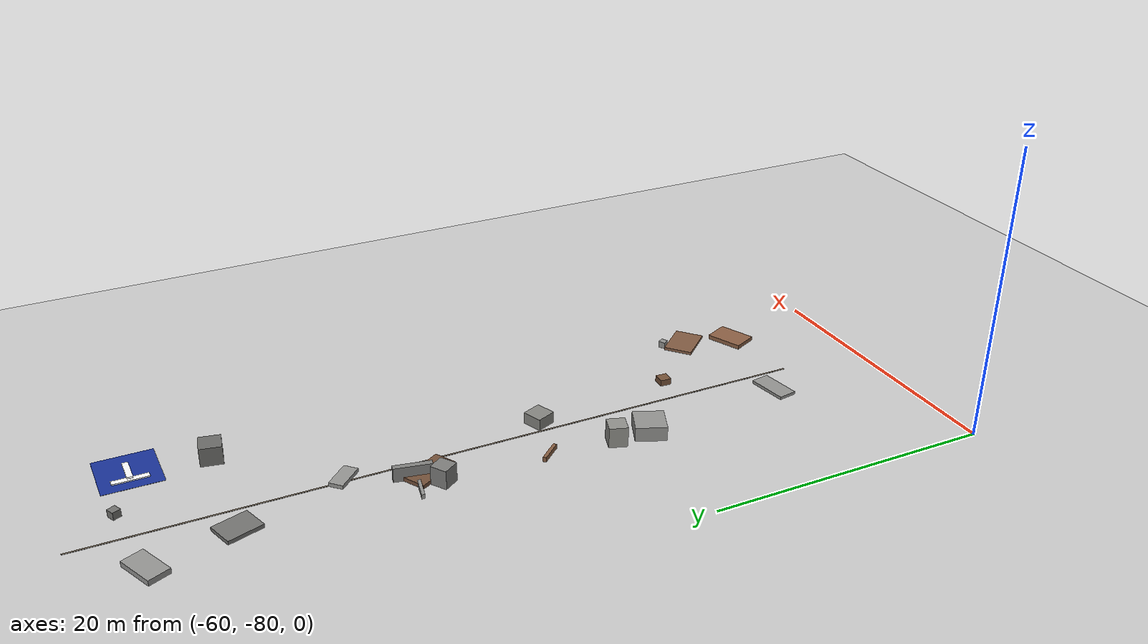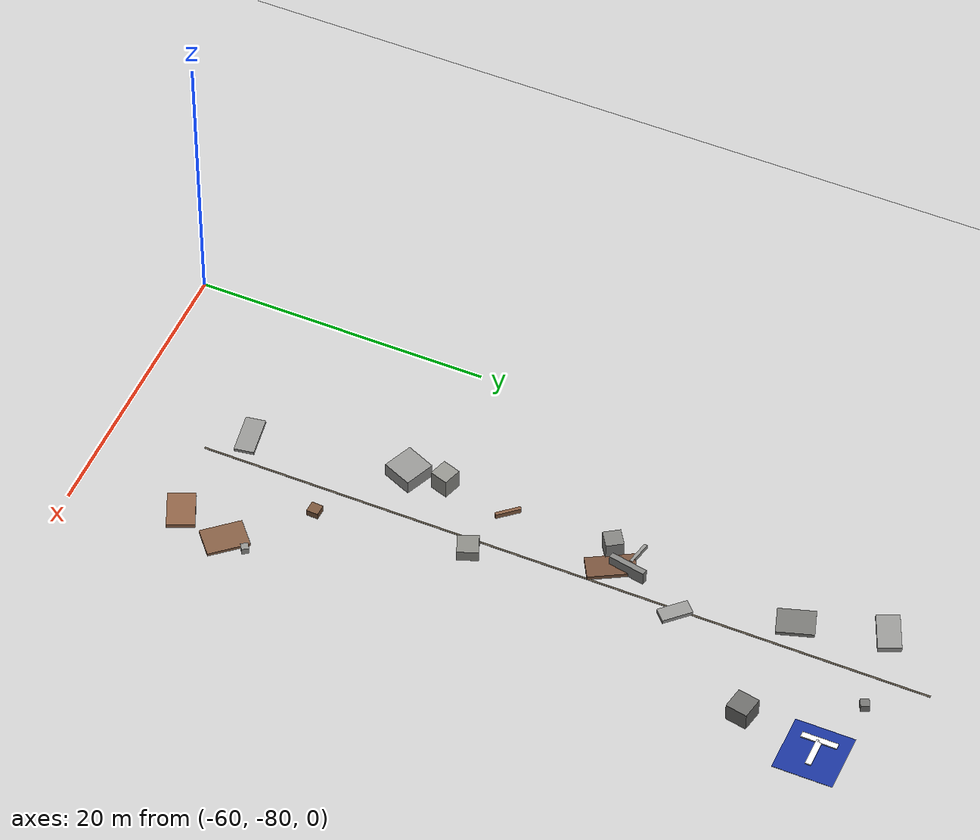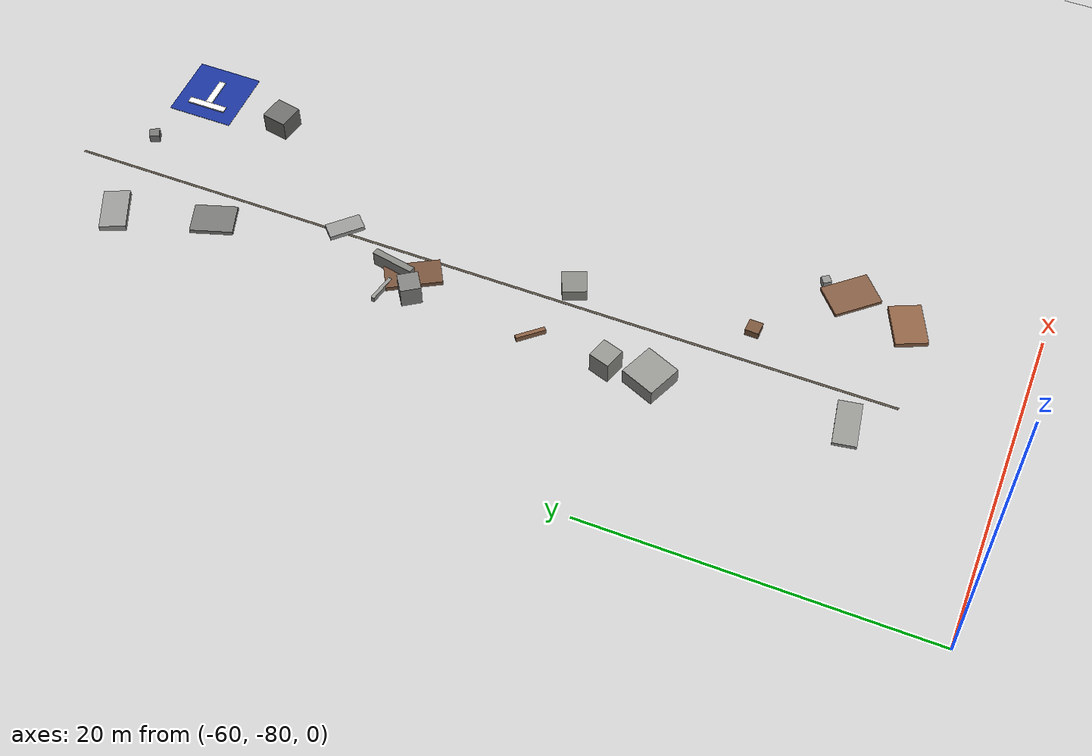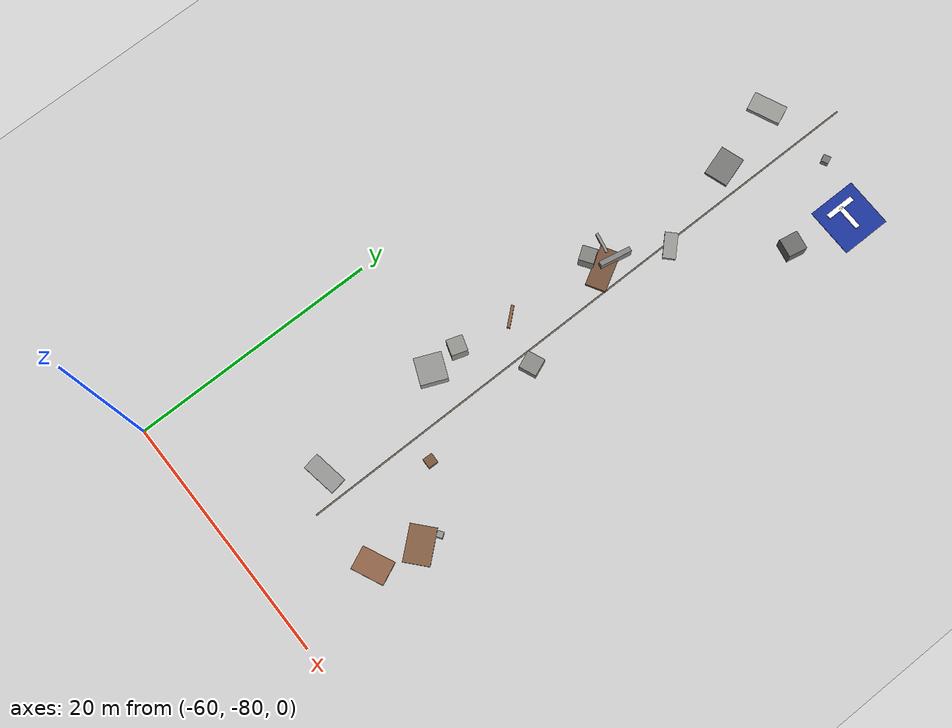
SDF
<sdf version="1.6">
 <world name="navitas_arena">
  <model name="ground_plane">
   <static>true</static>
   <link name="link">
    <collision name="collision">
     <geometry><plane><normal>0 0 1</normal><size>400 400</size></plane></geometry>
     <surface><friction><ode><mu>0.8</mu><mu2>0.8</mu2></ode></friction></surface>
    </collision>
    <visual name="visual">
     <cast_shadows>false</cast_shadows>
     <geometry><plane><normal>0 0 1</normal><size>400 400</size></plane></geometry>
     <material>
      <script><uri>file://media/materials/scripts/gazebo.material</uri><name>Gazebo/Grey</name></script>
     </material>
    </visual>
   </link>
  </model>
  <model name="gv_zor_-2">
   <static>true</static>
   <pose>-47.200 -48.800 0.010 0 0 0.000</pose>
   <link name="link">
    <collision name="col"><geometry><box><size>0.120 50.000 0.020</size></box></geometry></collision>
    <visual name="vis">
     <geometry><box><size>0.120 50.000 0.020</size></box></geometry>
     <material><ambient>0.42 0.38 0.32 1</ambient><diffuse>0.42 0.38 0.32 1</diffuse></material>
    </visual>
   </link>
  </model>
  <model name="chic_zor_3">
   <static>true</static>
   <pose>-50.437 -60.800 0.507 0 0 1.170</pose>
   <link name="link">
    <collision name="col"><geometry><box><size>2.126 2.126 1.014</size></box></geometry></collision>
    <visual name="vis">
     <geometry><box><size>2.126 2.126 1.014</size></box></geometry>
     <material><ambient>0.58 0.58 0.57 1</ambient><diffuse>0.58 0.58 0.57 1</diffuse></material>
    </visual>
   </link>
  </model>
  <model name="chic_zor_5">
   <static>true</static>
   <pose>-48.655 -44.800 0.500 0 0 1.382</pose>
   <link name="link">
    <collision name="col"><geometry><box><size>2.555 0.393 1.000</size></box></geometry></collision>
    <visual name="vis">
     <geometry><box><size>2.555 0.393 1.000</size></box></geometry>
     <material><ambient>0.51 0.51 0.50 1</ambient><diffuse>0.51 0.51 0.50 1</diffuse></material>
    </visual>
   </link>
  </model>
  <model name="deb_zor_3">
   <static>true</static>
   <pose>-49.228 -71.527 0.107 0 0 0.162</pose>
   <link name="link">
    <collision name="col"><geometry><box><size>2.806 1.343 0.214</size></box></geometry></collision>
    <visual name="vis">
     <geometry><box><size>2.806 1.343 0.214</size></box></geometry>
     <material><ambient>0.58 0.58 0.57 1</ambient><diffuse>0.58 0.58 0.57 1</diffuse></material>
    </visual>
   </link>
  </model>
  <model name="deb_zor_14">
   <static>true</static>
   <pose>-46.165 -54.741 0.406 0 0 1.957</pose>
   <link name="link">
    <collision name="col"><geometry><box><size>1.411 1.411 0.811</size></box></geometry></collision>
    <visual name="vis">
     <geometry><box><size>1.411 1.411 0.811</size></box></geometry>
     <material><ambient>0.53 0.53 0.51 1</ambient><diffuse>0.53 0.53 0.51 1</diffuse></material>
    </visual>
   </link>
  </model>
  <model name="deb_zor_16">
   <static>true</static>
   <pose>-50.531 -58.284 0.717 0 0 2.830</pose>
   <link name="link">
    <collision name="col"><geometry><box><size>1.275 1.275 1.434</size></box></geometry></collision>
    <visual name="vis">
     <geometry><box><size>1.275 1.275 1.434</size></box></geometry>
     <material><ambient>0.57 0.57 0.55 1</ambient><diffuse>0.57 0.57 0.55 1</diffuse></material>
    </visual>
   </link>
  </model>
  <model name="deb_zor_36">
   <static>true</static>
   <pose>-48.626 -45.946 0.141 0 0 2.090</pose>
   <link name="link">
    <collision name="col"><geometry><box><size>3.228 1.609 0.282</size></box></geometry></collision>
    <visual name="vis">
     <geometry><box><size>3.228 1.609 0.282</size></box></geometry>
     <material><ambient>0.46 0.32 0.23 1</ambient><diffuse>0.46 0.32 0.23 1</diffuse></material>
    </visual>
   </link>
  </model>
  <model name="deb_zor_45">
   <static>true</static>
   <pose>-45.153 -64.972 0.228 0 0 1.533</pose>
   <link name="link">
    <collision name="col"><geometry><box><size>0.793 0.793 0.456</size></box></geometry></collision>
    <visual name="vis">
     <geometry><box><size>0.793 0.793 0.456</size></box></geometry>
     <material><ambient>0.47 0.33 0.23 1</ambient><diffuse>0.47 0.33 0.23 1</diffuse></material>
    </visual>
   </link>
  </model>
  <model name="deb_zor_54">
   <static>true</static>
   <pose>-40.496 -67.702 0.234 0 0 0.584</pose>
   <link name="link">
    <collision name="col"><geometry><box><size>0.486 0.486 0.468</size></box></geometry></collision>
    <visual name="vis">
     <geometry><box><size>0.486 0.486 0.468</size></box></geometry>
     <material><ambient>0.57 0.57 0.56 1</ambient><diffuse>0.57 0.57 0.56 1</diffuse></material>
    </visual>
   </link>
  </model>
  <model name="deb_zor_80">
   <static>true</static>
   <pose>-50.248 -44.734 0.160 0 0 2.939</pose>
   <link name="link">
    <collision name="col"><geometry><box><size>1.658 0.213 0.319</size></box></geometry></collision>
    <visual name="vis">
     <geometry><box><size>1.658 0.213 0.319</size></box></geometry>
     <material><ambient>0.58 0.58 0.57 1</ambient><diffuse>0.58 0.58 0.57 1</diffuse></material>
    </visual>
   </link>
  </model>
  <model name="deb_zor_90">
   <static>true</static>
   <pose>-49.950 -46.363 0.665 0 0 2.162</pose>
   <link name="link">
    <collision name="col"><geometry><box><size>1.189 1.189 1.329</size></box></geometry></collision>
    <visual name="vis">
     <geometry><box><size>1.189 1.189 1.329</size></box></geometry>
     <material><ambient>0.50 0.50 0.49 1</ambient><diffuse>0.50 0.50 0.49 1</diffuse></material>
    </visual>
   </link>
  </model>
  <model name="deb_zor_92">
   <static>true</static>
   <pose>-40.830 -69.278 0.107 0 0 2.290</pose>
   <link name="link">
    <collision name="col"><geometry><box><size>2.844 2.032 0.214</size></box></geometry></collision>
    <visual name="vis">
     <geometry><box><size>2.844 2.032 0.214</size></box></geometry>
     <material><ambient>0.51 0.36 0.26 1</ambient><diffuse>0.51 0.36 0.26 1</diffuse></material>
    </visual>
   </link>
  </model>
  <model name="deb_zor_93">
   <static>true</static>
   <pose>-50.730 -27.947 0.187 0 0 0.413</pose>
   <link name="link">
    <collision name="col"><geometry><box><size>2.693 1.535 0.375</size></box></geometry></collision>
    <visual name="vis">
     <geometry><box><size>2.693 1.535 0.375</size></box></geometry>
     <material><ambient>0.59 0.59 0.58 1</ambient><diffuse>0.59 0.59 0.58 1</diffuse></material>
    </visual>
   </link>
  </model>
  <model name="deb_zor_95">
   <static>true</static>
   <pose>-44.738 -27.230 0.265 0 0 0.458</pose>
   <link name="link">
    <collision name="col"><geometry><box><size>0.591 0.591 0.531</size></box></geometry></collision>
    <visual name="vis">
     <geometry><box><size>0.591 0.591 0.531</size></box></geometry>
     <material><ambient>0.45 0.45 0.44 1</ambient><diffuse>0.45 0.45 0.44 1</diffuse></material>
    </visual>
   </link>
  </model>
  <model name="deb_zor_99">
   <static>true</static>
   <pose>-50.038 -53.668 0.177 0 0 2.289</pose>
   <link name="link">
    <collision name="col"><geometry><box><size>1.730 0.231 0.354</size></box></geometry></collision>
    <visual name="vis">
     <geometry><box><size>1.730 0.231 0.354</size></box></geometry>
     <material><ambient>0.53 0.37 0.26 1</ambient><diffuse>0.53 0.37 0.26 1</diffuse></material>
    </visual>
   </link>
  </model>
  <model name="deb_zor_103">
   <static>true</static>
   <pose>-46.888 -40.838 0.138 0 0 2.343</pose>
   <link name="link">
    <collision name="col"><geometry><box><size>2.066 1.005 0.276</size></box></geometry></collision>
    <visual name="vis">
     <geometry><box><size>2.066 1.005 0.276</size></box></geometry>
     <material><ambient>0.59 0.59 0.58 1</ambient><diffuse>0.59 0.59 0.58 1</diffuse></material>
    </visual>
   </link>
  </model>
  <model name="deb_zor_106">
   <static>true</static>
   <pose>-41.744 -72.799 0.157 0 0 0.422</pose>
   <link name="link">
    <collision name="col"><geometry><box><size>2.617 1.852 0.313</size></box></geometry></collision>
    <visual name="vis">
     <geometry><box><size>2.617 1.852 0.313</size></box></geometry>
     <material><ambient>0.55 0.38 0.27 1</ambient><diffuse>0.55 0.38 0.27 1</diffuse></material>
    </visual>
   </link>
  </model>
  <model name="deb_zor_107">
   <static>true</static>
   <pose>-49.182 -33.569 0.132 0 0 1.882</pose>
   <link name="link">
    <collision name="col"><geometry><box><size>2.496 1.919 0.264</size></box></geometry></collision>
    <visual name="vis">
     <geometry><box><size>2.496 1.919 0.264</size></box></geometry>
     <material><ambient>0.46 0.46 0.45 1</ambient><diffuse>0.46 0.46 0.45 1</diffuse></material>
    </visual>
   </link>
  </model>
  <model name="deb_zor_114">
   <static>true</static>
   <pose>-41.075 -33.922 0.658 0 0 2.955</pose>
   <link name="link">
    <collision name="col"><geometry><box><size>1.498 1.498 1.316</size></box></geometry></collision>
    <visual name="vis">
     <geometry><box><size>1.498 1.498 1.316</size></box></geometry>
     <material><ambient>0.42 0.42 0.41 1</ambient><diffuse>0.42 0.42 0.41 1</diffuse></material>
    </visual>
   </link>
  </model>
  <model name="hbpad_zor">
   <static>true</static>
   <pose>-40.200 -28.800 0.010 0 0 0.000</pose>
   <link name="link">
    <collision name="col"><geometry><box><size>4.000 4.000 0.020</size></box></geometry></collision>
    <visual name="vis">
     <geometry><box><size>4.000 4.000 0.020</size></box></geometry>
     <material><ambient>0.10 0.20 0.60 1</ambient><diffuse>0.10 0.20 0.60 1</diffuse></material>
    </visual>
   </link>
  </model>
  <model name="H_zor_l">
   <static>true</static>
   <pose>-41.200 -28.800 0.060 0 0 0.000</pose>
   <link name="link">
    <collision name="col"><geometry><box><size>0.400 2.400 0.100</size></box></geometry></collision>
    <visual name="vis">
     <geometry><box><size>0.400 2.400 0.100</size></box></geometry>
     <material><ambient>1.00 1.00 1.00 1</ambient><diffuse>1.00 1.00 1.00 1</diffuse></material>
    </visual>
   </link>
  </model>
  <model name="H_zor_b">
   <static>true</static>
   <pose>-40.200 -28.800 0.060 0 0 0.000</pose>
   <link name="link">
    <collision name="col"><geometry><box><size>2.000 0.400 0.100</size></box></geometry></collision>
    <visual name="vis">
     <geometry><box><size>2.000 0.400 0.100</size></box></geometry>
     <material><ambient>1.00 1.00 1.00 1</ambient><diffuse>1.00 1.00 1.00 1</diffuse></material>
    </visual>
   </link>
  </model>
 </world>
</sdf>
